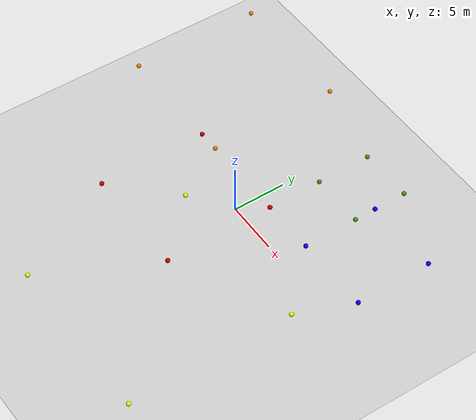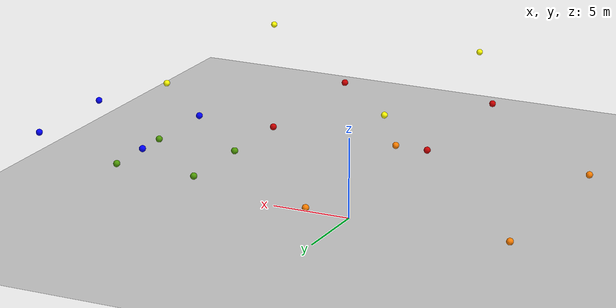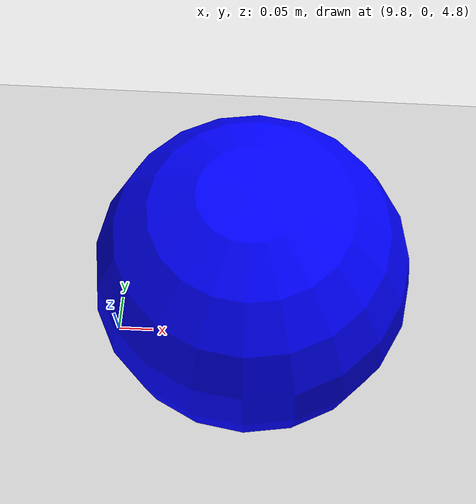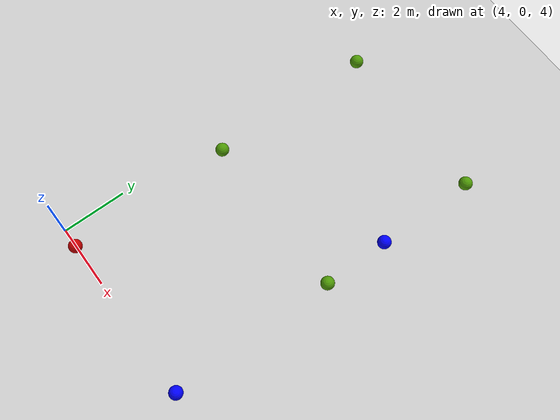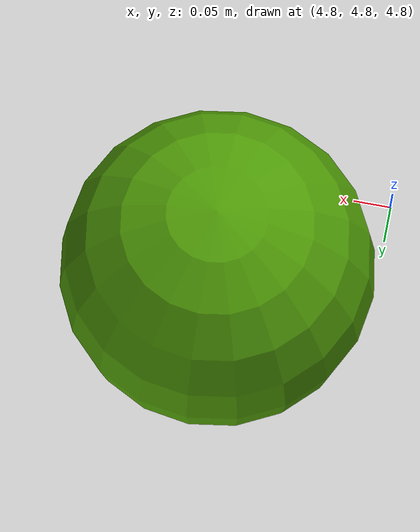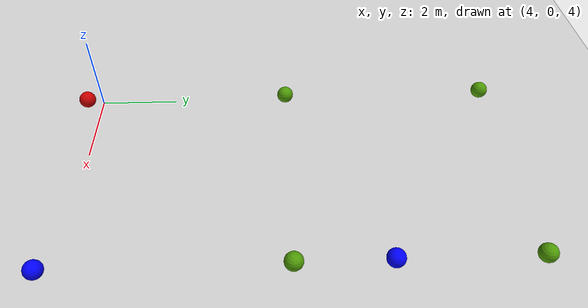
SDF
<sdf version="1.5">
 <world name="default">
  <physics type="ode">
   <ode>
    <solver><type>quick</type><iters>100</iters><sor>1.0</sor></solver>
    <constraints>
     <cfm>0.0</cfm>
     <erp>0.9</erp>
     <contact_max_correcting_vel>0.1</contact_max_correcting_vel>
     <contact_surface_layer>0.0</contact_surface_layer>
    </constraints>
   </ode>
   <real_time_update_rate>-1</real_time_update_rate>
  </physics>
  <model name="ground_plane">
   <static>true</static>
   <link name="link">
    <collision name="collision">
     <geometry><plane><normal>0 0 1</normal><size>5000 5000</size></plane></geometry>
     <surface><friction><ode><mu>1</mu><mu2>1</mu2></ode></friction></surface>
    </collision>
    <visual name="runway">
     <pose>0 0 0.005 0 0 0</pose>
     <cast_shadows>false</cast_shadows>
     <geometry><plane><normal>0 0 1</normal><size>1829 45</size></plane></geometry>
     <material>
      <script><uri>file://media/materials/scripts/gazebo.material</uri><name>Gazebo/Runway</name></script>
     </material>
    </visual>
    <visual name="grass">
     <pose>0 0 -0.1 0 0 0</pose>
     <cast_shadows>false</cast_shadows>
     <geometry><plane><normal>0 0 1</normal><size>5000 5000</size></plane></geometry>
     <material>
      <script><uri>file://media/materials/scripts/gazebo.material</uri><name>Gazebo/Grass</name></script>
     </material>
    </visual>
   </link>
  </model>
  <include><uri>model://sun</uri></include>
  <model name="uav_10">
   <pose>5 5 5 0 0 0</pose>
   <link name="link">
    <inertial>
     <mass>1</mass>
     <inertia><ixx>0.1</ixx></inertia>
     <inertia><ixy>0</ixy></inertia>
     <inertia><ixz>0</ixz></inertia>
     <inertia><iyy>0.1</iyy></inertia>
     <inertia><iyz>0</iyz></inertia>
     <inertia><izz>0.1</izz></inertia>
    </inertial>
    <gravity>0</gravity>
    <visual name="visual">
     <geometry><sphere><radius>0.2</radius></sphere></geometry>
     <material>
      <script><name>Gazebo/Grey</name><uri>file://media/materials/scripts/gazebo.material</uri></script>
      <shader type="pixel"><normal_map>__default__</normal_map></shader>
      <ambient>0.3 0.3 0.3 1</ambient>
      <diffuse>0.306 0.604 0.024 1</diffuse>
      <specular>0.01 0.01 0.01 1</specular>
      <emissive>0 0 0 1</emissive>
     </material>
     <transparency>0.05</transparency>
    </visual>
   </link>
   <static>0</static>
  </model>
  <model name="uav_11">
   <pose>5 10 5 0 0 0</pose>
   <link name="link">
    <inertial>
     <mass>1</mass>
     <inertia><ixx>0.1</ixx></inertia>
     <inertia><ixy>0</ixy></inertia>
     <inertia><ixz>0</ixz></inertia>
     <inertia><iyy>0.1</iyy></inertia>
     <inertia><iyz>0</iyz></inertia>
     <inertia><izz>0.1</izz></inertia>
    </inertial>
    <gravity>0</gravity>
    <visual name="visual">
     <geometry><sphere><radius>0.2</radius></sphere></geometry>
     <material>
      <script><name>Gazebo/Grey</name><uri>file://media/materials/scripts/gazebo.material</uri></script>
      <shader type="pixel"><normal_map>__default__</normal_map></shader>
      <ambient>0.3 0.3 0.3 1</ambient>
      <diffuse>0.306 0.604 0.024 1</diffuse>
      <specular>0.01 0.01 0.01 1</specular>
      <emissive>0 0 0 1</emissive>
     </material>
     <transparency>0.05</transparency>
    </visual>
   </link>
   <static>0</static>
  </model>
  <model name="uav_12">
   <pose>10 10 5 0 0 0</pose>
   <link name="link">
    <inertial>
     <mass>1</mass>
     <inertia><ixx>0.1</ixx></inertia>
     <inertia><ixy>0</ixy></inertia>
     <inertia><ixz>0</ixz></inertia>
     <inertia><iyy>0.1</iyy></inertia>
     <inertia><iyz>0</iyz></inertia>
     <inertia><izz>0.1</izz></inertia>
    </inertial>
    <gravity>0</gravity>
    <visual name="visual">
     <geometry><sphere><radius>0.2</radius></sphere></geometry>
     <material>
      <script><name>Gazebo/Grey</name><uri>file://media/materials/scripts/gazebo.material</uri></script>
      <shader type="pixel"><normal_map>__default__</normal_map></shader>
      <ambient>0.3 0.3 0.3 1</ambient>
      <diffuse>0.306 0.604 0.024 1</diffuse>
      <specular>0.01 0.01 0.01 1</specular>
      <emissive>0 0 0 1</emissive>
     </material>
     <transparency>0.05</transparency>
    </visual>
   </link>
   <static>0</static>
  </model>
  <model name="uav_13">
   <pose>10 5 5 0 0 0</pose>
   <link name="link">
    <inertial>
     <mass>1</mass>
     <inertia><ixx>0.1</ixx></inertia>
     <inertia><ixy>0</ixy></inertia>
     <inertia><ixz>0</ixz></inertia>
     <inertia><iyy>0.1</iyy></inertia>
     <inertia><iyz>0</iyz></inertia>
     <inertia><izz>0.1</izz></inertia>
    </inertial>
    <gravity>0</gravity>
    <visual name="visual">
     <geometry><sphere><radius>0.2</radius></sphere></geometry>
     <material>
      <script><name>Gazebo/Grey</name><uri>file://media/materials/scripts/gazebo.material</uri></script>
      <shader type="pixel"><normal_map>__default__</normal_map></shader>
      <ambient>0.3 0.3 0.3 1</ambient>
      <diffuse>0.306 0.604 0.024 1</diffuse>
      <specular>0.01 0.01 0.01 1</specular>
      <emissive>0 0 0 1</emissive>
     </material>
     <transparency>0.05</transparency>
    </visual>
   </link>
   <static>0</static>
  </model>
  <model name="uav_14">
   <pose>5 5 5 0 0 0</pose>
   <link name="link">
    <inertial>
     <mass>1</mass>
     <inertia><ixx>0.1</ixx></inertia>
     <inertia><ixy>0</ixy></inertia>
     <inertia><ixz>0</ixz></inertia>
     <inertia><iyy>0.1</iyy></inertia>
     <inertia><iyz>0</iyz></inertia>
     <inertia><izz>0.1</izz></inertia>
    </inertial>
    <gravity>0</gravity>
    <visual name="visual">
     <geometry><sphere><radius>0.2</radius></sphere></geometry>
     <material>
      <script><name>Gazebo/Grey</name><uri>file://media/materials/scripts/gazebo.material</uri></script>
      <shader type="pixel"><normal_map>__default__</normal_map></shader>
      <ambient>0.3 0.3 0.3 1</ambient>
      <diffuse>0.306 0.604 0.024 1</diffuse>
      <specular>0.01 0.01 0.01 1</specular>
      <emissive>0 0 0 1</emissive>
     </material>
     <transparency>0.05</transparency>
    </visual>
   </link>
   <static>0</static>
  </model>
  <model name="uav_20">
   <pose>10 0 5 0 0 0</pose>
   <link name="link">
    <inertial>
     <mass>1</mass>
     <inertia><ixx>0.1</ixx></inertia>
     <inertia><ixy>0</ixy></inertia>
     <inertia><ixz>0</ixz></inertia>
     <inertia><iyy>0.1</iyy></inertia>
     <inertia><iyz>0</iyz></inertia>
     <inertia><izz>0.1</izz></inertia>
    </inertial>
    <gravity>0</gravity>
    <visual name="visual">
     <geometry><sphere><radius>0.2</radius></sphere></geometry>
     <material>
      <script><name>Gazebo/Grey</name><uri>file://media/materials/scripts/gazebo.material</uri></script>
      <shader type="pixel"><normal_map>__default__</normal_map></shader>
      <ambient>0.3 0.3 0.3 1</ambient>
      <diffuse>0.0 0.0 1.0 1</diffuse>
      <specular>0.01 0.01 0.01 1</specular>
      <emissive>0 0 0 1</emissive>
     </material>
     <transparency>0.05</transparency>
    </visual>
   </link>
   <static>0</static>
  </model>
  <model name="uav_21">
   <pose>10 7 5 0 0 0</pose>
   <link name="link">
    <inertial>
     <mass>1</mass>
     <inertia><ixx>0.1</ixx></inertia>
     <inertia><ixy>0</ixy></inertia>
     <inertia><ixz>0</ixz></inertia>
     <inertia><iyy>0.1</iyy></inertia>
     <inertia><iyz>0</iyz></inertia>
     <inertia><izz>0.1</izz></inertia>
    </inertial>
    <gravity>0</gravity>
    <visual name="visual">
     <geometry><sphere><radius>0.2</radius></sphere></geometry>
     <material>
      <script><name>Gazebo/Grey</name><uri>file://media/materials/scripts/gazebo.material</uri></script>
      <shader type="pixel"><normal_map>__default__</normal_map></shader>
      <ambient>0.3 0.3 0.3 1</ambient>
      <diffuse>0.0 0.0 1.0 1</diffuse>
      <specular>0.01 0.01 0.01 1</specular>
      <emissive>0 0 0 1</emissive>
     </material>
     <transparency>0.05</transparency>
    </visual>
   </link>
   <static>0</static>
  </model>
  <model name="uav_22">
   <pose>17 7 5 0 0 0</pose>
   <link name="link">
    <inertial>
     <mass>1</mass>
     <inertia><ixx>0.1</ixx></inertia>
     <inertia><ixy>0</ixy></inertia>
     <inertia><ixz>0</ixz></inertia>
     <inertia><iyy>0.1</iyy></inertia>
     <inertia><iyz>0</iyz></inertia>
     <inertia><izz>0.1</izz></inertia>
    </inertial>
    <gravity>0</gravity>
    <visual name="visual">
     <geometry><sphere><radius>0.2</radius></sphere></geometry>
     <material>
      <script><name>Gazebo/Grey</name><uri>file://media/materials/scripts/gazebo.material</uri></script>
      <shader type="pixel"><normal_map>__default__</normal_map></shader>
      <ambient>0.3 0.3 0.3 1</ambient>
      <diffuse>0.0 0.0 1.0 1</diffuse>
      <specular>0.01 0.01 0.01 1</specular>
      <emissive>0 0 0 1</emissive>
     </material>
     <transparency>0.05</transparency>
    </visual>
   </link>
   <static>0</static>
  </model>
  <model name="uav_23">
   <pose>17 0 5 0 0 0</pose>
   <link name="link">
    <inertial>
     <mass>1</mass>
     <inertia><ixx>0.1</ixx></inertia>
     <inertia><ixy>0</ixy></inertia>
     <inertia><ixz>0</ixz></inertia>
     <inertia><iyy>0.1</iyy></inertia>
     <inertia><iyz>0</iyz></inertia>
     <inertia><izz>0.1</izz></inertia>
    </inertial>
    <gravity>0</gravity>
    <visual name="visual">
     <geometry><sphere><radius>0.2</radius></sphere></geometry>
     <material>
      <script><name>Gazebo/Grey</name><uri>file://media/materials/scripts/gazebo.material</uri></script>
      <shader type="pixel"><normal_map>__default__</normal_map></shader>
      <ambient>0.3 0.3 0.3 1</ambient>
      <diffuse>0.0 0.0 1.0 1</diffuse>
      <specular>0.01 0.01 0.01 1</specular>
      <emissive>0 0 0 1</emissive>
     </material>
     <transparency>0.05</transparency>
    </visual>
   </link>
   <static>0</static>
  </model>
  <model name="uav_24">
   <pose>10 0 5 0 0 0</pose>
   <link name="link">
    <inertial>
     <mass>1</mass>
     <inertia><ixx>0.1</ixx></inertia>
     <inertia><ixy>0</ixy></inertia>
     <inertia><ixz>0</ixz></inertia>
     <inertia><iyy>0.1</iyy></inertia>
     <inertia><iyz>0</iyz></inertia>
     <inertia><izz>0.1</izz></inertia>
    </inertial>
    <gravity>0</gravity>
    <visual name="visual">
     <geometry><sphere><radius>0.2</radius></sphere></geometry>
     <material>
      <script><name>Gazebo/Grey</name><uri>file://media/materials/scripts/gazebo.material</uri></script>
      <shader type="pixel"><normal_map>__default__</normal_map></shader>
      <ambient>0.3 0.3 0.3 1</ambient>
      <diffuse>0.0 0.0 1.0 1</diffuse>
      <specular>0.01 0.01 0.01 1</specular>
      <emissive>0 0 0 1</emissive>
     </material>
     <transparency>0.05</transparency>
    </visual>
   </link>
   <static>0</static>
  </model>
  <model name="uav_30">
   <pose>-5 -10 5 0 0 0</pose>
   <link name="link">
    <inertial>
     <mass>1</mass>
     <inertia><ixx>0.1</ixx></inertia>
     <inertia><ixy>0</ixy></inertia>
     <inertia><ixz>0</ixz></inertia>
     <inertia><iyy>0.1</iyy></inertia>
     <inertia><iyz>0</iyz></inertia>
     <inertia><izz>0.1</izz></inertia>
    </inertial>
    <gravity>0</gravity>
    <visual name="visual">
     <geometry><sphere><radius>0.2</radius></sphere></geometry>
     <material>
      <script><name>Gazebo/Grey</name><uri>file://media/materials/scripts/gazebo.material</uri></script>
      <shader type="pixel"><normal_map>__default__</normal_map></shader>
      <ambient>0.3 0.3 0.3 1</ambient>
      <diffuse>0.8 0.0 0.0 1</diffuse>
      <specular>0.01 0.01 0.01 1</specular>
      <emissive>0 0 0 1</emissive>
     </material>
     <transparency>0.05</transparency>
    </visual>
   </link>
   <static>0</static>
  </model>
  <model name="uav_31">
   <pose>-5 0 5 0 0 0</pose>
   <link name="link">
    <inertial>
     <mass>1</mass>
     <inertia><ixx>0.1</ixx></inertia>
     <inertia><ixy>0</ixy></inertia>
     <inertia><ixz>0</ixz></inertia>
     <inertia><iyy>0.1</iyy></inertia>
     <inertia><iyz>0</iyz></inertia>
     <inertia><izz>0.1</izz></inertia>
    </inertial>
    <gravity>0</gravity>
    <visual name="visual">
     <geometry><sphere><radius>0.2</radius></sphere></geometry>
     <material>
      <script><name>Gazebo/Grey</name><uri>file://media/materials/scripts/gazebo.material</uri></script>
      <shader type="pixel"><normal_map>__default__</normal_map></shader>
      <ambient>0.3 0.3 0.3 1</ambient>
      <diffuse>0.8 0.0 0.0 1</diffuse>
      <specular>0.01 0.01 0.01 1</specular>
      <emissive>0 0 0 1</emissive>
     </material>
     <transparency>0.05</transparency>
    </visual>
   </link>
   <static>0</static>
  </model>
  <model name="uav_32">
   <pose>5 0 5 0 0 0</pose>
   <link name="link">
    <inertial>
     <mass>1</mass>
     <inertia><ixx>0.1</ixx></inertia>
     <inertia><ixy>0</ixy></inertia>
     <inertia><ixz>0</ixz></inertia>
     <inertia><iyy>0.1</iyy></inertia>
     <inertia><iyz>0</iyz></inertia>
     <inertia><izz>0.1</izz></inertia>
    </inertial>
    <gravity>0</gravity>
    <visual name="visual">
     <geometry><sphere><radius>0.2</radius></sphere></geometry>
     <material>
      <script><name>Gazebo/Grey</name><uri>file://media/materials/scripts/gazebo.material</uri></script>
      <shader type="pixel"><normal_map>__default__</normal_map></shader>
      <ambient>0.3 0.3 0.3 1</ambient>
      <diffuse>0.8 0.0 0.0 1</diffuse>
      <specular>0.01 0.01 0.01 1</specular>
      <emissive>0 0 0 1</emissive>
     </material>
     <transparency>0.05</transparency>
    </visual>
   </link>
   <static>0</static>
  </model>
  <model name="uav_33">
   <pose>5 -10 5 0 0 0</pose>
   <link name="link">
    <inertial>
     <mass>1</mass>
     <inertia><ixx>0.1</ixx></inertia>
     <inertia><ixy>0</ixy></inertia>
     <inertia><ixz>0</ixz></inertia>
     <inertia><iyy>0.1</iyy></inertia>
     <inertia><iyz>0</iyz></inertia>
     <inertia><izz>0.1</izz></inertia>
    </inertial>
    <gravity>0</gravity>
    <visual name="visual">
     <geometry><sphere><radius>0.2</radius></sphere></geometry>
     <material>
      <script><name>Gazebo/Grey</name><uri>file://media/materials/scripts/gazebo.material</uri></script>
      <shader type="pixel"><normal_map>__default__</normal_map></shader>
      <ambient>0.3 0.3 0.3 1</ambient>
      <diffuse>0.8 0.0 0.0 1</diffuse>
      <specular>0.01 0.01 0.01 1</specular>
      <emissive>0 0 0 1</emissive>
     </material>
     <transparency>0.05</transparency>
    </visual>
   </link>
   <static>0</static>
  </model>
  <model name="uav_34">
   <pose>-5 -10 5 0 0 0</pose>
   <link name="link">
    <inertial>
     <mass>1</mass>
     <inertia><ixx>0.1</ixx></inertia>
     <inertia><ixy>0</ixy></inertia>
     <inertia><ixz>0</ixz></inertia>
     <inertia><iyy>0.1</iyy></inertia>
     <inertia><iyz>0</iyz></inertia>
     <inertia><izz>0.1</izz></inertia>
    </inertial>
    <gravity>0</gravity>
    <visual name="visual">
     <geometry><sphere><radius>0.2</radius></sphere></geometry>
     <material>
      <script><name>Gazebo/Grey</name><uri>file://media/materials/scripts/gazebo.material</uri></script>
      <shader type="pixel"><normal_map>__default__</normal_map></shader>
      <ambient>0.3 0.3 0.3 1</ambient>
      <diffuse>0.8 0.0 0.0 1</diffuse>
      <specular>0.01 0.01 0.01 1</specular>
      <emissive>0 0 0 1</emissive>
     </material>
     <transparency>0.05</transparency>
    </visual>
   </link>
   <static>0</static>
  </model>
  <model name="uav_40">
   <pose>-15 0 5 0 0 0</pose>
   <link name="link">
    <inertial>
     <mass>1</mass>
     <inertia><ixx>0.1</ixx></inertia>
     <inertia><ixy>0</ixy></inertia>
     <inertia><ixz>0</ixz></inertia>
     <inertia><iyy>0.1</iyy></inertia>
     <inertia><iyz>0</iyz></inertia>
     <inertia><izz>0.1</izz></inertia>
    </inertial>
    <gravity>0</gravity>
    <visual name="visual">
     <geometry><sphere><radius>0.2</radius></sphere></geometry>
     <material>
      <script><name>Gazebo/Grey</name><uri>file://media/materials/scripts/gazebo.material</uri></script>
      <shader type="pixel"><normal_map>__default__</normal_map></shader>
      <ambient>0.3 0.3 0.3 1</ambient>
      <diffuse>1.0 0.5 0.0 1</diffuse>
      <specular>0.01 0.01 0.01 1</specular>
      <emissive>0 0 0 1</emissive>
     </material>
     <transparency>0.05</transparency>
    </visual>
   </link>
   <static>0</static>
  </model>
  <model name="uav_41">
   <pose>-15 12 5 0 0 0</pose>
   <link name="link">
    <inertial>
     <mass>1</mass>
     <inertia><ixx>0.1</ixx></inertia>
     <inertia><ixy>0</ixy></inertia>
     <inertia><ixz>0</ixz></inertia>
     <inertia><iyy>0.1</iyy></inertia>
     <inertia><iyz>0</iyz></inertia>
     <inertia><izz>0.1</izz></inertia>
    </inertial>
    <gravity>0</gravity>
    <visual name="visual">
     <geometry><sphere><radius>0.2</radius></sphere></geometry>
     <material>
      <script><name>Gazebo/Grey</name><uri>file://media/materials/scripts/gazebo.material</uri></script>
      <shader type="pixel"><normal_map>__default__</normal_map></shader>
      <ambient>0.3 0.3 0.3 1</ambient>
      <diffuse>1.0 0.5 0.0 1</diffuse>
      <specular>0.01 0.01 0.01 1</specular>
      <emissive>0 0 0 1</emissive>
     </material>
     <transparency>0.05</transparency>
    </visual>
   </link>
   <static>0</static>
  </model>
  <model name="uav_42">
   <pose>-3 12 5 0 0 0</pose>
   <link name="link">
    <inertial>
     <mass>1</mass>
     <inertia><ixx>0.1</ixx></inertia>
     <inertia><ixy>0</ixy></inertia>
     <inertia><ixz>0</ixz></inertia>
     <inertia><iyy>0.1</iyy></inertia>
     <inertia><iyz>0</iyz></inertia>
     <inertia><izz>0.1</izz></inertia>
    </inertial>
    <gravity>0</gravity>
    <visual name="visual">
     <geometry><sphere><radius>0.2</radius></sphere></geometry>
     <material>
      <script><name>Gazebo/Grey</name><uri>file://media/materials/scripts/gazebo.material</uri></script>
      <shader type="pixel"><normal_map>__default__</normal_map></shader>
      <ambient>0.3 0.3 0.3 1</ambient>
      <diffuse>1.0 0.5 0.0 1</diffuse>
      <specular>0.01 0.01 0.01 1</specular>
      <emissive>0 0 0 1</emissive>
     </material>
     <transparency>0.05</transparency>
    </visual>
   </link>
   <static>0</static>
  </model>
  <model name="uav_43">
   <pose>-3 0 5 0 0 0</pose>
   <link name="link">
    <inertial>
     <mass>1</mass>
     <inertia><ixx>0.1</ixx></inertia>
     <inertia><ixy>0</ixy></inertia>
     <inertia><ixz>0</ixz></inertia>
     <inertia><iyy>0.1</iyy></inertia>
     <inertia><iyz>0</iyz></inertia>
     <inertia><izz>0.1</izz></inertia>
    </inertial>
    <gravity>0</gravity>
    <visual name="visual">
     <geometry><sphere><radius>0.2</radius></sphere></geometry>
     <material>
      <script><name>Gazebo/Grey</name><uri>file://media/materials/scripts/gazebo.material</uri></script>
      <shader type="pixel"><normal_map>__default__</normal_map></shader>
      <ambient>0.3 0.3 0.3 1</ambient>
      <diffuse>1.0 0.5 0.0 1</diffuse>
      <specular>0.01 0.01 0.01 1</specular>
      <emissive>0 0 0 1</emissive>
     </material>
     <transparency>0.05</transparency>
    </visual>
   </link>
   <static>0</static>
  </model>
  <model name="uav_44">
   <pose>-15 0 5 0 0 0</pose>
   <link name="link">
    <inertial>
     <mass>1</mass>
     <inertia><ixx>0.1</ixx></inertia>
     <inertia><ixy>0</ixy></inertia>
     <inertia><ixz>0</ixz></inertia>
     <inertia><iyy>0.1</iyy></inertia>
     <inertia><iyz>0</iyz></inertia>
     <inertia><izz>0.1</izz></inertia>
    </inertial>
    <gravity>0</gravity>
    <visual name="visual">
     <geometry><sphere><radius>0.2</radius></sphere></geometry>
     <material>
      <script><name>Gazebo/Grey</name><uri>file://media/materials/scripts/gazebo.material</uri></script>
      <shader type="pixel"><normal_map>__default__</normal_map></shader>
      <ambient>0.3 0.3 0.3 1</ambient>
      <diffuse>1.0 0.5 0.0 1</diffuse>
      <specular>0.01 0.01 0.01 1</specular>
      <emissive>0 0 0 1</emissive>
     </material>
     <transparency>0.05</transparency>
    </visual>
   </link>
   <static>0</static>
  </model>
  <model name="uav_50">
   <pose>0 -20 5 0 0 0</pose>
   <link name="link">
    <inertial>
     <mass>1</mass>
     <inertia><ixx>0.1</ixx></inertia>
     <inertia><ixy>0</ixy></inertia>
     <inertia><ixz>0</ixz></inertia>
     <inertia><iyy>0.1</iyy></inertia>
     <inertia><iyz>0</iyz></inertia>
     <inertia><izz>0.1</izz></inertia>
    </inertial>
    <gravity>0</gravity>
    <visual name="visual">
     <geometry><sphere><radius>0.2</radius></sphere></geometry>
     <material>
      <script><name>Gazebo/Grey</name><uri>file://media/materials/scripts/gazebo.material</uri></script>
      <shader type="pixel"><normal_map>__default__</normal_map></shader>
      <ambient>0.3 0.3 0.3 1</ambient>
      <diffuse>1.0 1.0 0.0 1</diffuse>
      <specular>0.01 0.01 0.01 1</specular>
      <emissive>0 0 0 1</emissive>
     </material>
     <transparency>0.05</transparency>
    </visual>
   </link>
   <static>0</static>
  </model>
  <model name="uav_51">
   <pose>0 -5 5 0 0 0</pose>
   <link name="link">
    <inertial>
     <mass>1</mass>
     <inertia><ixx>0.1</ixx></inertia>
     <inertia><ixy>0</ixy></inertia>
     <inertia><ixz>0</ixz></inertia>
     <inertia><iyy>0.1</iyy></inertia>
     <inertia><iyz>0</iyz></inertia>
     <inertia><izz>0.1</izz></inertia>
    </inertial>
    <gravity>0</gravity>
    <visual name="visual">
     <geometry><sphere><radius>0.2</radius></sphere></geometry>
     <material>
      <script><name>Gazebo/Grey</name><uri>file://media/materials/scripts/gazebo.material</uri></script>
      <shader type="pixel"><normal_map>__default__</normal_map></shader>
      <ambient>0.3 0.3 0.3 1</ambient>
      <diffuse>1.0 1.0 0.0 1</diffuse>
      <specular>0.01 0.01 0.01 1</specular>
      <emissive>0 0 0 1</emissive>
     </material>
     <transparency>0.05</transparency>
    </visual>
   </link>
   <static>0</static>
  </model>
  <model name="uav_52">
   <pose>15 -5 5 0 0 0</pose>
   <link name="link">
    <inertial>
     <mass>1</mass>
     <inertia><ixx>0.1</ixx></inertia>
     <inertia><ixy>0</ixy></inertia>
     <inertia><ixz>0</ixz></inertia>
     <inertia><iyy>0.1</iyy></inertia>
     <inertia><iyz>0</iyz></inertia>
     <inertia><izz>0.1</izz></inertia>
    </inertial>
    <gravity>0</gravity>
    <visual name="visual">
     <geometry><sphere><radius>0.2</radius></sphere></geometry>
     <material>
      <script><name>Gazebo/Grey</name><uri>file://media/materials/scripts/gazebo.material</uri></script>
      <shader type="pixel"><normal_map>__default__</normal_map></shader>
      <ambient>0.3 0.3 0.3 1</ambient>
      <diffuse>1.0 1.0 0.0 1</diffuse>
      <specular>0.01 0.01 0.01 1</specular>
      <emissive>0 0 0 1</emissive>
     </material>
     <transparency>0.05</transparency>
    </visual>
   </link>
   <static>0</static>
  </model>
  <model name="uav_53">
   <pose>15 -20 5 0 0 0</pose>
   <link name="link">
    <inertial>
     <mass>1</mass>
     <inertia><ixx>0.1</ixx></inertia>
     <inertia><ixy>0</ixy></inertia>
     <inertia><ixz>0</ixz></inertia>
     <inertia><iyy>0.1</iyy></inertia>
     <inertia><iyz>0</iyz></inertia>
     <inertia><izz>0.1</izz></inertia>
    </inertial>
    <gravity>0</gravity>
    <visual name="visual">
     <geometry><sphere><radius>0.2</radius></sphere></geometry>
     <material>
      <script><name>Gazebo/Grey</name><uri>file://media/materials/scripts/gazebo.material</uri></script>
      <shader type="pixel"><normal_map>__default__</normal_map></shader>
      <ambient>0.3 0.3 0.3 1</ambient>
      <diffuse>1.0 1.0 0.0 1</diffuse>
      <specular>0.01 0.01 0.01 1</specular>
      <emissive>0 0 0 1</emissive>
     </material>
     <transparency>0.05</transparency>
    </visual>
   </link>
   <static>0</static>
  </model>
  <model name="uav_54">
   <pose>0 -20 5 0 0 0</pose>
   <link name="link">
    <inertial>
     <mass>1</mass>
     <inertia><ixx>0.1</ixx></inertia>
     <inertia><ixy>0</ixy></inertia>
     <inertia><ixz>0</ixz></inertia>
     <inertia><iyy>0.1</iyy></inertia>
     <inertia><iyz>0</iyz></inertia>
     <inertia><izz>0.1</izz></inertia>
    </inertial>
    <gravity>0</gravity>
    <visual name="visual">
     <geometry><sphere><radius>0.2</radius></sphere></geometry>
     <material>
      <script><name>Gazebo/Grey</name><uri>file://media/materials/scripts/gazebo.material</uri></script>
      <shader type="pixel"><normal_map>__default__</normal_map></shader>
      <ambient>0.3 0.3 0.3 1</ambient>
      <diffuse>1.0 1.0 0.0 1</diffuse>
      <specular>0.01 0.01 0.01 1</specular>
      <emissive>0 0 0 1</emissive>
     </material>
     <transparency>0.05</transparency>
    </visual>
   </link>
   <static>0</static>
  </model>
 </world>
</sdf>
